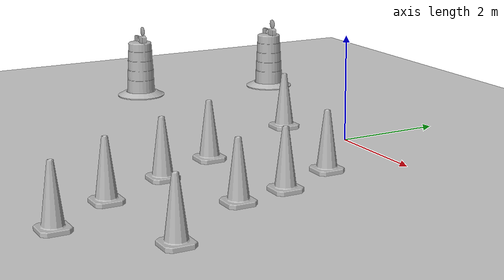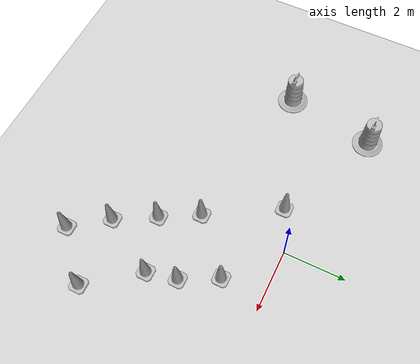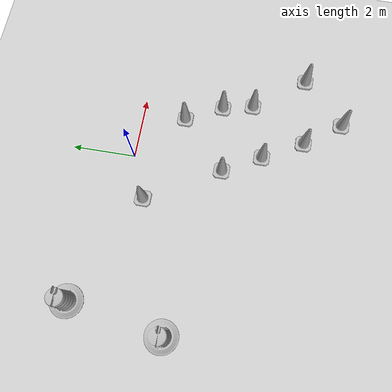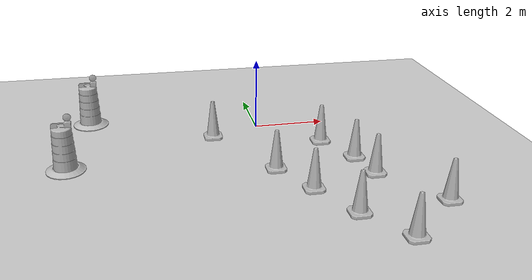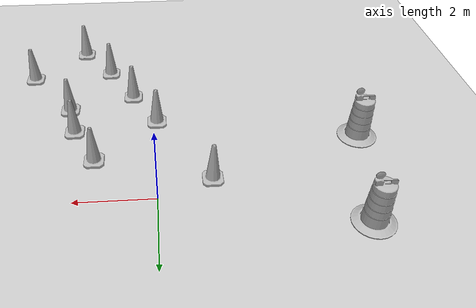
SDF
<sdf version="1.7">
 <world name="default">
  <light name="sun" type="directional">
   <pose>0 0 10 0 -0 0</pose>
   <diffuse>0.8 0.8 0.8 1</diffuse>
   <specular>0.2 0.2 0.2 1</specular>
   <attenuation>
    <range>1000</range>
    <constant>0.9</constant>
    <linear>0.01</linear>
    <quadratic>0.001</quadratic>
   </attenuation>
   <direction>-0.5 0.1 -0.9</direction>
   <spot><inner_angle>0</inner_angle><outer_angle>0</outer_angle><falloff>0</falloff></spot>
  </light>
  <model name="ground_plane">
   <static>1</static>
   <link name="link">
    <collision name="collision">
     <geometry><plane><normal>0 0 1</normal><size>100 100</size></plane></geometry>
     <surface><friction><ode><mu>100</mu><mu2>50</mu2></ode></friction></surface>
    </collision>
    <visual name="visual">
     <cast_shadows>0</cast_shadows>
     <geometry><plane><normal>0 0 1</normal><size>100 100</size></plane></geometry>
     <material>
      <script><uri>file://media/materials/scripts/gazebo.material</uri><name>Gazebo/Grey</name></script>
     </material>
    </visual>
   </link>
  </model>
  <gravity>0 0 -9.8</gravity>
  <magnetic_field>6e-06 2.3e-05 -4.2e-05</magnetic_field>
  <atmosphere type="adiabatic"/>
  <physics type="ode">
   <max_step_size>0.001</max_step_size>
   <real_time_factor>1</real_time_factor>
   <real_time_update_rate>1000</real_time_update_rate>
  </physics>
  <scene><ambient>0.4 0.4 0.4 1</ambient><background>0.7 0.7 0.7 1</background><shadows>1</shadows></scene>
  <audio><device>default</device></audio>
  <spherical_coordinates>
   <surface_model>EARTH_WGS84</surface_model>
   <latitude_deg>0</latitude_deg>
   <longitude_deg>0</longitude_deg>
   <elevation>0</elevation>
   <heading_deg>0</heading_deg>
  </spherical_coordinates>
  <model name="Construction Cone">
   <link name="link">
    <collision name="collision">
     <geometry>
      <mesh><scale>10 10 10</scale><uri>model://construction_cone/meshes/construction_cone.dae</uri></mesh>
     </geometry>
    </collision>
    <visual name="visual">
     <geometry>
      <mesh><scale>10 10 10</scale><uri>model://construction_cone/meshes/construction_cone.dae</uri></mesh>
     </geometry>
    </visual>
    <inertial>
     <inertia><ixx>1</ixx><ixy>0</ixy><ixz>0</ixz><iyy>1</iyy><iyz>0</iyz><izz>1</izz></inertia>
     <mass>1</mass>
    </inertial>
   </link>
   <pose>-0.039027 -2.83311 -1e-05 0 -0 0</pose>
  </model>
  <model name="Construction Cone_0">
   <link name="link">
    <collision name="collision">
     <geometry>
      <mesh><scale>10 10 10</scale><uri>model://construction_cone/meshes/construction_cone.dae</uri></mesh>
     </geometry>
    </collision>
    <visual name="visual">
     <geometry>
      <mesh><scale>10 10 10</scale><uri>model://construction_cone/meshes/construction_cone.dae</uri></mesh>
     </geometry>
    </visual>
    <inertial>
     <inertia><ixx>1</ixx><ixy>0</ixy><ixz>0</ixz><iyy>1</iyy><iyz>0</iyz><izz>1</izz></inertia>
     <mass>1</mass>
    </inertial>
   </link>
   <pose>-1.34668 -0.561233 -1e-05 0 -0 0</pose>
  </model>
  <model name="Construction Cone_1">
   <link name="link">
    <collision name="collision">
     <geometry>
      <mesh><scale>10 10 10</scale><uri>model://construction_cone/meshes/construction_cone.dae</uri></mesh>
     </geometry>
    </collision>
    <visual name="visual">
     <geometry>
      <mesh><scale>10 10 10</scale><uri>model://construction_cone/meshes/construction_cone.dae</uri></mesh>
     </geometry>
    </visual>
    <inertial>
     <inertia><ixx>1</ixx><ixy>0</ixy><ixz>0</ixz><iyy>1</iyy><iyz>0</iyz><izz>1</izz></inertia>
     <mass>1</mass>
    </inertial>
   </link>
   <pose>1.56415 -1.37616 -1e-05 -1e-06 0 0</pose>
  </model>
  <model name="Construction Cone_2">
   <link name="link">
    <collision name="collision">
     <geometry>
      <mesh><scale>10 10 10</scale><uri>model://construction_cone/meshes/construction_cone.dae</uri></mesh>
     </geometry>
    </collision>
    <visual name="visual">
     <geometry>
      <mesh><scale>10 10 10</scale><uri>model://construction_cone/meshes/construction_cone.dae</uri></mesh>
     </geometry>
    </visual>
    <inertial>
     <inertia><ixx>1</ixx><ixy>0</ixy><ixz>0</ixz><iyy>1</iyy><iyz>0</iyz><izz>1</izz></inertia>
     <mass>1</mass>
    </inertial>
   </link>
   <pose>2.37003 -3.50433 -0 0 -0 0</pose>
  </model>
  <model name="Construction Barrel">
   <link name="link">
    <inertial>
     <pose>0 0 0.4 0 -0 0</pose>
     <mass>500</mass>
     <inertia><ixx>51.2096</ixx><iyy>51.2096</iyy><izz>25</izz><ixy>0</ixy><ixz>0</ixz><iyz>0</iyz></inertia>
    </inertial>
    <collision name="collision">
     <geometry><mesh><uri>model://construction_barrel/meshes/construction_barrel.dae</uri></mesh></geometry>
    </collision>
    <visual name="visual">
     <geometry><mesh><uri>model://construction_barrel/meshes/construction_barrel.dae</uri></mesh></geometry>
    </visual>
   </link>
   <pose>-4.79378 0.99601 -1e-06 3e-06 -2e-06 -1.5e-05</pose>
  </model>
  <model name="Construction Barrel_0">
   <link name="link">
    <inertial>
     <pose>0 0 0.4 0 -0 0</pose>
     <mass>500</mass>
     <inertia><ixx>51.2096</ixx><iyy>51.2096</iyy><izz>25</izz><ixy>0</ixy><ixz>0</ixz><iyz>0</iyz></inertia>
    </inertial>
    <collision name="collision">
     <geometry><mesh><uri>model://construction_barrel/meshes/construction_barrel.dae</uri></mesh></geometry>
    </collision>
    <visual name="visual">
     <geometry><mesh><uri>model://construction_barrel/meshes/construction_barrel.dae</uri></mesh></geometry>
    </visual>
   </link>
   <pose>-5.32106 -1.93814 -2e-06 8e-06 -4e-06 -1.5e-05</pose>
  </model>
  <model name="Construction Cone_3">
   <link name="link">
    <collision name="collision">
     <geometry>
      <mesh><scale>10 10 10</scale><uri>model://construction_cone/meshes/construction_cone.dae</uri></mesh>
     </geometry>
    </collision>
    <visual name="visual">
     <geometry>
      <mesh><scale>10 10 10</scale><uri>model://construction_cone/meshes/construction_cone.dae</uri></mesh>
     </geometry>
    </visual>
    <inertial>
     <inertia><ixx>1</ixx><ixy>0</ixy><ixz>0</ixz><iyy>1</iyy><iyz>0</iyz><izz>1</izz></inertia>
     <mass>1</mass>
    </inertial>
   </link>
   <pose>3.58004 -5.11585 -8e-06 0 1e-06 0</pose>
  </model>
  <model name="Construction Cone_4">
   <link name="link">
    <collision name="collision">
     <geometry>
      <mesh><scale>10 10 10</scale><uri>model://construction_cone/meshes/construction_cone.dae</uri></mesh>
     </geometry>
    </collision>
    <visual name="visual">
     <geometry>
      <mesh><scale>10 10 10</scale><uri>model://construction_cone/meshes/construction_cone.dae</uri></mesh>
     </geometry>
    </visual>
    <inertial>
     <inertia><ixx>1</ixx><ixy>0</ixy><ixz>0</ixz><iyy>1</iyy><iyz>0</iyz><izz>1</izz></inertia>
     <mass>1</mass>
    </inertial>
   </link>
   <pose>0.618256 -4.0268 -0 0 -0 0</pose>
  </model>
  <model name="Construction Cone_5">
   <link name="link">
    <collision name="collision">
     <geometry>
      <mesh><scale>10 10 10</scale><uri>model://construction_cone/meshes/construction_cone.dae</uri></mesh>
     </geometry>
    </collision>
    <visual name="visual">
     <geometry>
      <mesh><scale>10 10 10</scale><uri>model://construction_cone/meshes/construction_cone.dae</uri></mesh>
     </geometry>
    </visual>
    <inertial>
     <inertia><ixx>1</ixx><ixy>0</ixy><ixz>0</ixz><iyy>1</iyy><iyz>0</iyz><izz>1</izz></inertia>
     <mass>1</mass>
    </inertial>
   </link>
   <pose>2.1567 -2.5335 -0 -0 -0 -0</pose>
  </model>
  <model name="Construction Cone_6">
   <link name="link">
    <collision name="collision">
     <geometry>
      <mesh><scale>10 10 10</scale><uri>model://construction_cone/meshes/construction_cone.dae</uri></mesh>
     </geometry>
    </collision>
    <visual name="visual">
     <geometry>
      <mesh><scale>10 10 10</scale><uri>model://construction_cone/meshes/construction_cone.dae</uri></mesh>
     </geometry>
    </visual>
    <inertial>
     <inertia><ixx>1</ixx><ixy>0</ixy><ixz>0</ixz><iyy>1</iyy><iyz>0</iyz><izz>1</izz></inertia>
     <mass>1</mass>
    </inertial>
   </link>
   <pose>1.3138 -5.29216 -0 0 -1e-06 0</pose>
  </model>
  <model name="Construction Cone_7">
   <link name="link">
    <collision name="collision">
     <geometry>
      <mesh><scale>10 10 10</scale><uri>model://construction_cone/meshes/construction_cone.dae</uri></mesh>
     </geometry>
    </collision>
    <visual name="visual">
     <geometry>
      <mesh><scale>10 10 10</scale><uri>model://construction_cone/meshes/construction_cone.dae</uri></mesh>
     </geometry>
    </visual>
    <inertial>
     <inertia><ixx>1</ixx><ixy>0</ixy><ixz>0</ixz><iyy>1</iyy><iyz>0</iyz><izz>1</izz></inertia>
     <mass>1</mass>
    </inertial>
   </link>
   <pose>2.15336 -6.44478 -0 0 -0 0</pose>
  </model>
 </world>
</sdf>
